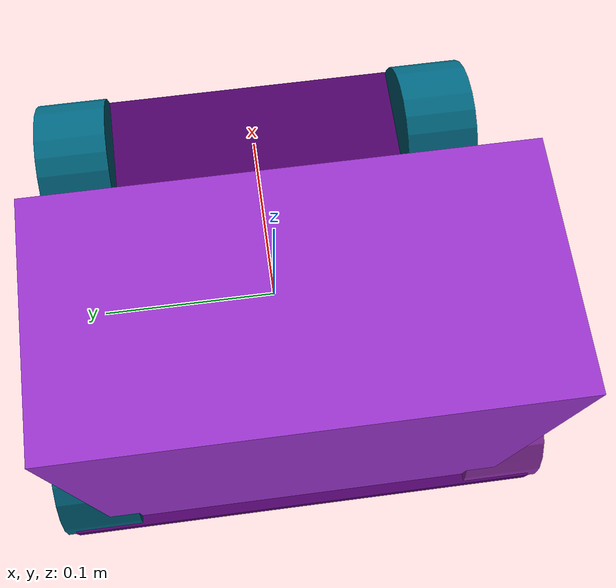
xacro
<?xml version="1.0"?>
<robot xmlns:xacro="http://www.ros.org/wiki/xacro" >

  <!-- ===== BASE LINK ===== -->
  <link name="base_link"/>
  <!-- base_footprint -->
  <joint name="base_footprint_joint" type="fixed">
    <parent link="base_link"/>
    <child  link="base_footprint"/>
    <origin xyz="0 0 0" rpy="0 0 0"/>
  </joint>
  <link name="base_footprint"/>

  <!-- ===== CHASSIS ===== -->
  <!-- from UGV02 DXF top view: 252.336 x 239.796 x 10 mm -->
  <link name="chassis-link">
    <visual>
      <origin xyz="0 0 0" rpy="0 0 0"/>
      <geometry>
        <box size="0.252336 0.239796 0.01"/>
      </geometry>
      <material name="brown">
        <color rgba="0.3 0 0.4 1"/>
      </material>
    </visual>
    <collision>
      <origin xyz="0 0 0" rpy="0 0 0"/>
      <geometry>
        <box size="0.252336 0.239796 0.01"/>
      </geometry>
    </collision>
    <inertial>
      <!-- you can tune mass later if you have a measured value -->
      <mass value="0.6"/>
      <inertia ixx="0.00065" ixy="0" ixz="0" iyy="0.00073" iyz="0" izz="0.00136"/>
    </inertial>
  </link>

  <!-- original vertical offset kept -->
  <joint name="joint-base-chassis" type="fixed">
    <parent link="base_link"/>
    <child  link="chassis-link"/>
    <origin xyz="0 0 0.02" rpy="0 0 0"/>
  </joint>

  <material name="blue">
    <color rgba="0 0.4 0.5 1"/>
  </material>

  <!-- ===== WHEEL TEMPLATE (values inlined for clarity) =====
       wheel radius from DXF arcs ~39.65 mm -> radius="0.03965"
       wheel length (tread width) assumed 0.04 m (adjust if you know exact)
  -->

  <!-- ========== RIGHT SIDE (front, mid, rear) ========== -->
  <!-- FRONT RIGHT (existing) -->
  <link name="front-right-wheel-link">
    <visual>
      <origin xyz="0 0 0" rpy="1.5707963267948966 0 0"/>
      <geometry><cylinder length="0.04" radius="0.03965"/></geometry>
      <material name="blue"/>
    </visual>
    <collision>
      <origin xyz="0 0 0" rpy="1.5707963267948966 0 0"/>
      <geometry><cylinder length="0.04" radius="0.03965"/></geometry>
    </collision>
    <inertial>
      <origin xyz="0 0 0" rpy="1.5707963267948966 0 0"/>
      <mass value="0.15"/>
      <inertia ixx="3.4e-05" ixy="0" ixz="0" iyy="3.4e-05" iyz="0" izz="6.3e-05"/>
    </inertial>
  </link>
  <joint name="joint-chassis-front-right-wheel" type="continuous">
    <parent link="chassis-link"/>
    <child  link="front-right-wheel-link"/>
    <origin xyz="0.086 0.105 0" rpy="0 0 0"/>
    <axis xyz="0 1 0"/>
  </joint>

  <!-- MID RIGHT (NEW) -->
  <link name="mid-right-wheel-link">
    <visual>
      <origin xyz="0 0 0" rpy="1.5707963267948966 0 0"/>
      <geometry><cylinder length="0.04" radius="0.03965"/></geometry>
      <material name="blue"/>
    </visual>
    <collision>
      <origin xyz="0 0 0" rpy="1.5707963267948966 0 0"/>
      <geometry><cylinder length="0.04" radius="0.03965"/></geometry>
    </collision>
    <inertial>
      <origin xyz="0 0 0" rpy="1.5707963267948966 0 0"/>
      <mass value="0.15"/>
      <inertia ixx="3.4e-05" ixy="0" ixz="0" iyy="3.4e-05" iyz="0" izz="6.3e-05"/>
    </inertial>
  </link>
  <!-- MID RIGHT (free-rolling, mimics front-right) -->
  <joint name="joint-chassis-mid-right-wheel" type="continuous">
    <parent link="chassis-link"/>
    <child  link="mid-right-wheel-link"/>
    <origin xyz="0.000 0.105 0" rpy="0 0 0"/>
    <axis xyz="0 1 0"/>
    <!-- make the mid wheel spin exactly like the powered right wheel -->
    <mimic joint="joint-chassis-front-right-wheel" multiplier="1.0" offset="0.0"/>
  </joint>

  <!-- REAR RIGHT (existing “rare-right-wheel-link”) -->
  <link name="rare-right-wheel-link">
    <visual>
      <origin xyz="0 0 0" rpy="1.5707963267948966 0 0"/>
      <geometry><cylinder length="0.04" radius="0.03965"/></geometry>
      <material name="blue"/>
    </visual>
    <collision>
      <origin xyz="0 0 0" rpy="1.5707963267948966 0 0"/>
      <geometry><cylinder length="0.04" radius="0.03965"/></geometry>
    </collision>
    <inertial>
      <origin xyz="0 0 0" rpy="1.5707963267948966 0 0"/>
      <mass value="0.15"/>
      <inertia ixx="3.4e-05" ixy="0" ixz="0" iyy="3.4e-05" iyz="0" izz="6.3e-05"/>
    </inertial>
  </link>
  <joint name="joint-chassis-rare-right-wheel" type="continuous">
    <parent link="chassis-link"/>
    <child  link="rare-right-wheel-link"/>
    <origin xyz="-0.086 0.105 0" rpy="0 0 0"/>
    <axis xyz="0 1 0"/>
  </joint>

  <!-- ========== LEFT SIDE (front, mid, rear) ========== -->
  <!-- FRONT LEFT (existing) -->
  <link name="front-left-wheel-link">
    <visual>
      <origin xyz="0 0 0" rpy="1.5707963267948966 0 0"/>
      <geometry><cylinder length="0.04" radius="0.03965"/></geometry>
      <material name="blue"/>
    </visual>
    <collision>
      <origin xyz="0 0 0" rpy="1.5707963267948966 0 0"/>
      <geometry><cylinder length="0.04" radius="0.03965"/></geometry>
    </collision>
    <inertial>
      <origin xyz="0 0 0" rpy="1.5707963267948966 0 0"/>
      <mass value="0.15"/>
      <inertia ixx="3.4e-05" ixy="0" ixz="0" iyy="3.4e-05" iyz="0" izz="6.3e-05"/>
    </inertial>
  </link>
  <joint name="joint-chassis-front-left-wheel" type="continuous">
    <parent link="chassis-link"/>
    <child  link="front-left-wheel-link"/>
    <origin xyz="0.086 -0.105 0" rpy="0 0 0"/>
    <axis xyz="0 1 0"/>
  </joint>

  <!-- MID LEFT (NEW) -->
  <link name="mid-left-wheel-link">
    <visual>
      <origin xyz="0 0 0" rpy="1.5707963267948966 0 0"/>
      <geometry><cylinder length="0.04" radius="0.03965"/></geometry>
      <material name="blue"/>
    </visual>
    <collision>
      <origin xyz="0 0 0" rpy="1.5707963267948966 0 0"/>
      <geometry><cylinder length="0.04" radius="0.03965"/></geometry>
    </collision>
    <inertial>
      <origin xyz="0 0 0" rpy="1.5707963267948966 0 0"/>
      <mass value="0.15"/>
      <inertia ixx="3.4e-05" ixy="0" ixz="0" iyy="3.4e-05" iyz="0" izz="6.3e-05"/>
    </inertial>
  </link>
  <!-- MID LEFT (free-rolling, mimics front-left) -->
  <joint name="joint-chassis-mid-left-wheel" type="continuous">
    <parent link="chassis-link"/>
    <child  link="mid-left-wheel-link"/>
    <origin xyz="0.000 -0.105 0" rpy="0 0 0"/>
    <axis xyz="0 1 0"/>
    <!-- make the mid wheel spin exactly like the powered left wheel -->
    <mimic joint="joint-chassis-front-left-wheel" multiplier="1.0" offset="0.0"/>
  </joint>

  <!-- REAR LEFT (existing “rare-left-wheel-link”) -->
  <link name="rare-left-wheel-link">
    <visual>
      <origin xyz="0 0 0" rpy="1.5707963267948966 0 0"/>
      <geometry><cylinder length="0.04" radius="0.03965"/></geometry>
    </visual>
    <collision>
      <origin xyz="0 0 0" rpy="1.5707963267948966 0 0"/>
      <geometry><cylinder length="0.04" radius="0.03965"/></geometry>
    </collision>
    <inertial>
      <origin xyz="0 0 0" rpy="1.5707963267948966 0 0"/>
      <mass value="0.15"/>
      <inertia ixx="3.4e-05" ixy="0" ixz="0" iyy="3.4e-05" iyz="0" izz="6.3e-05"/>
    </inertial>
  </link>
  <joint name="joint-chassis-rare-left-wheel" type="continuous">
    <parent link="chassis-link"/>
    <child  link="rare-left-wheel-link"/>
    <origin xyz="-0.086 -0.105 0" rpy="0 0 0"/>
    <axis xyz="0 1 0"/>
  </joint>

  <!-- ===== Gazebo material/friction (kept & extended) ===== -->
  <gazebo reference="chassis-link">
    <material>Gazebo/DarkGrey</material>
  </gazebo>

  <gazebo reference="front-right-wheel-link"><mu1>10000.0</mu1><mu2>10000.0</mu2><material>Gazebo/Purple</material></gazebo>
  <gazebo reference="mid-right-wheel-link"><mu1>10000.0</mu1><mu2>10000.0</mu2><material>Gazebo/Purple</material></gazebo>
  <gazebo reference="rare-right-wheel-link"><mu1>10000.0</mu1><mu2>10000.0</mu2><material>Gazebo/Purple</material></gazebo>

  <gazebo reference="front-left-wheel-link"><mu1>10000.0</mu1><mu2>10000.0</mu2><material>Gazebo/Purple</material></gazebo>
  <gazebo reference="mid-left-wheel-link"><mu1>10000.0</mu1><mu2>10000.0</mu2><material>Gazebo/Purple</material></gazebo>
  <gazebo reference="rare-left-wheel-link"><mu1>10000.0</mu1><mu2>10000.0</mu2><material>Gazebo/Purple</material></gazebo>
<!-- ===== Package box (rear cargo) =====
     Dimensions (mm): width=200, height=186, depth(extrude)=100
     URDF (m): X=0.10, Y=0.20, Z=0.186
-->
<link name="package_box_link">
  <visual>
    <origin xyz="0 0 0" rpy="0 0 0"/>
    <geometry>
      <box size="0.10 0.20 0.186"/>
    </geometry>
    <material name="cargo_purple">
      <color rgba="0.6 0.2 0.8 1"/>
    </material>
  </visual>

  <collision>
    <origin xyz="0 0 0" rpy="0 0 0"/>
    <geometry>
      <box size="0.10 0.20 0.186"/>
    </geometry>
  </collision>

  <inertial>
    <origin xyz="0 0 0" rpy="0 0 0"/>
    <mass value="0.5"/>
    <inertia ixx="0.003108" ixy="0" ixz="0"
             iyy="0.001858" iyz="0"
             izz="0.002083"/>
  </inertial>
</link>

<joint name="joint-chassis-package-box" type="fixed">
  <parent link="chassis-link"/>
  <child  link="package_box_link"/>
  <!-- Place at rear (−X), centered in Y, sitting on chassis top -->
  <!-- chassis: 0.252336 x 0.239796 x 0.01 -->
  <origin xyz="-0.0712 0 0.098" rpy="0 0 0"/>
</joint>

<!-- ===== Gazebo visualization & physics ===== -->
<gazebo reference="package_box_link">
  <material>Gazebo/Yellow</material>
  <mu1>1.0</mu1>       <!-- friction coefficient 1 -->
  <mu2>1.0</mu2>       <!-- friction coefficient 2 -->
  <kp>100000.0</kp>    <!-- contact stiffness -->
  <kd>1.0</kd>         <!-- damping -->
</gazebo>
</robot>
